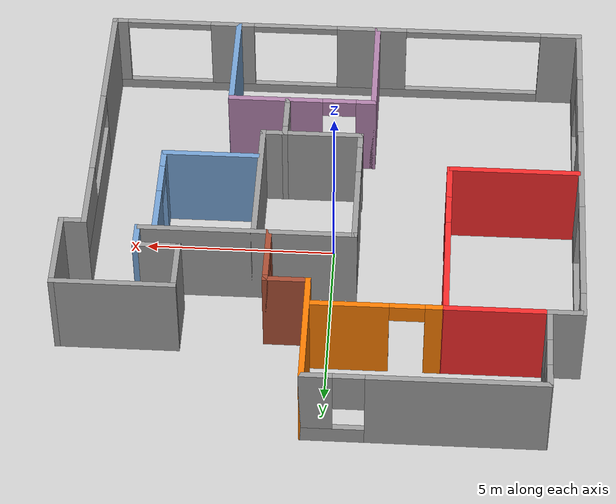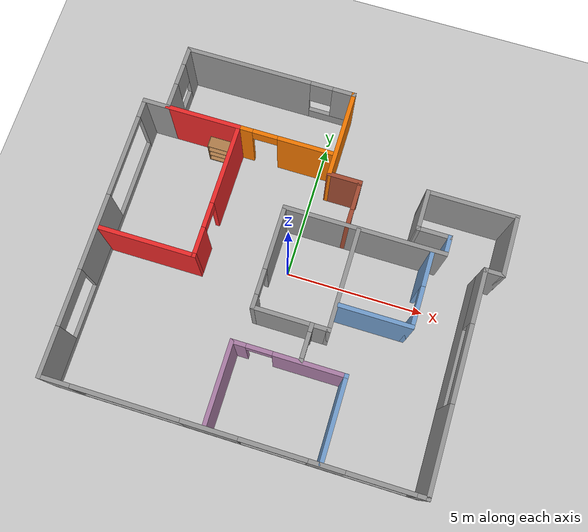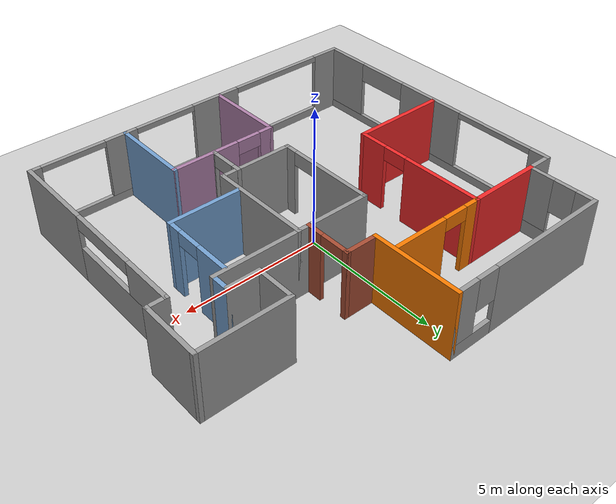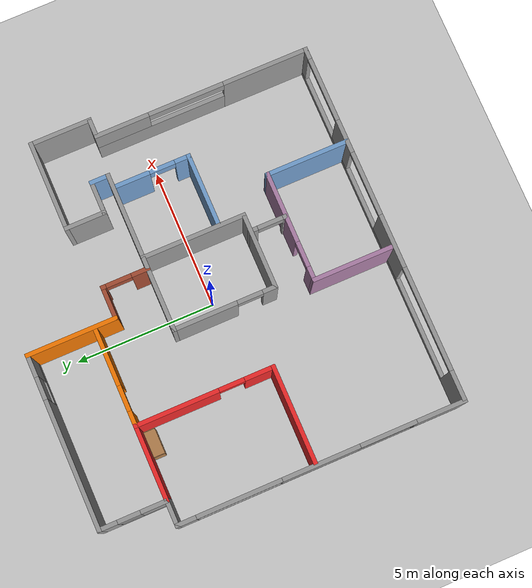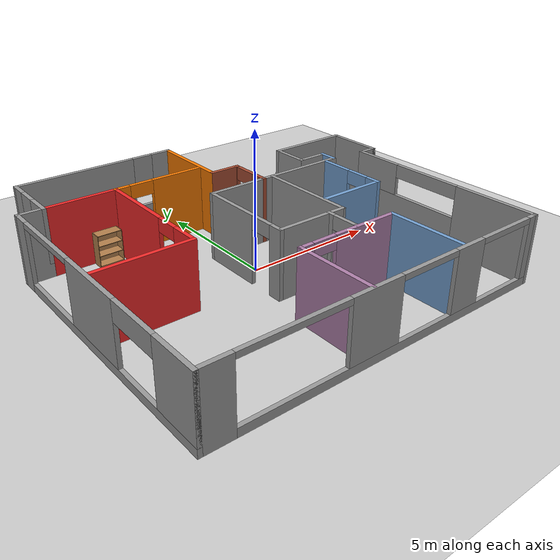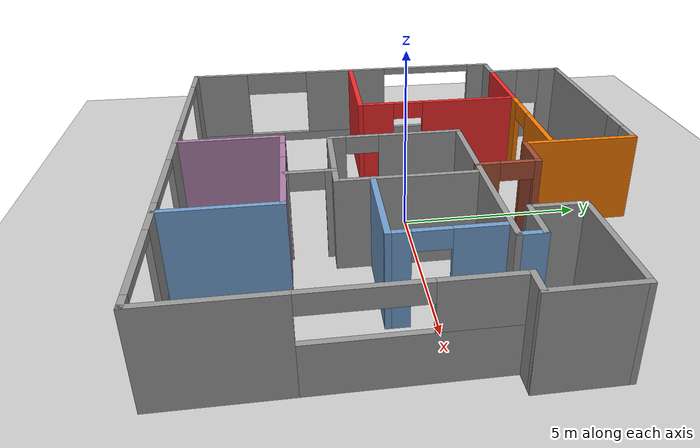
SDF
<sdf version="1.6">
 <world name="default">
  <model name="ground_plane">
   <static>1</static>
   <link name="link">
    <collision name="collision">
     <geometry><plane><normal>0 0 1</normal><size>100 100</size></plane></geometry>
     <surface>
      <contact><collide_bitmask>65535</collide_bitmask></contact>
      <friction><ode><mu>100</mu><mu2>50</mu2></ode></friction>
     </surface>
    </collision>
    <visual name="visual">
     <cast_shadows>0</cast_shadows>
     <geometry><plane><normal>0 0 1</normal><size>100 100</size></plane></geometry>
     <material>
      <script><uri>file://media/materials/scripts/gazebo.material</uri><name>Gazebo/Grey</name></script>
     </material>
    </visual>
   </link>
  </model>
  <model name="Naegok_House">
   <pose>0.27217 0.0598 0 0 -0 0</pose>
   <link name="Wall_32">
    <pose>-5.875 5.05 0 0 -0 -1.5708</pose>
    <visual name="Wall_32_Visual_0">
     <pose>-0.895035 0 1.25 0 -0 0</pose>
     <geometry><box><size>0.709929 0.15 2.5</size></box></geometry>
     <material>
      <script><uri>file://media/materials/scripts/gazebo.material</uri><name>Gazebo/Grey</name></script>
      <ambient>1 1 1 1</ambient>
     </material>
     <meta><layer>0</layer></meta>
    </visual>
    <collision name="Wall_32_Collision_0">
     <geometry><box><size>0.709929 0.15 2.5</size></box></geometry>
     <pose>-0.895035 0 1.25 0 -0 0</pose>
    </collision>
    <visual name="Wall_32_Visual_1">
     <pose>0.354965 0 0.25 0 -0 0</pose>
     <geometry><box><size>1.79007 0.15 0.5</size></box></geometry>
     <material>
      <script><uri>file://media/materials/scripts/gazebo.material</uri><name>Gazebo/Grey</name></script>
      <ambient>1 1 1 1</ambient>
     </material>
     <meta><layer>0</layer></meta>
    </visual>
    <collision name="Wall_32_Collision_1">
     <geometry><box><size>1.79007 0.15 0.5</size></box></geometry>
     <pose>0.354965 0 0.25 0 -0 0</pose>
    </collision>
    <visual name="Wall_32_Visual_2">
     <pose>0.754965 0 1.5 0 -0 0</pose>
     <geometry><box><size>0.990071 0.15 2</size></box></geometry>
     <material>
      <script><uri>file://media/materials/scripts/gazebo.material</uri><name>Gazebo/Grey</name></script>
      <ambient>1 1 1 1</ambient>
     </material>
     <meta><layer>0</layer></meta>
    </visual>
    <collision name="Wall_32_Collision_2">
     <geometry><box><size>0.990071 0.15 2</size></box></geometry>
     <pose>0.754965 0 1.5 0 -0 0</pose>
    </collision>
    <visual name="Wall_32_Visual_3">
     <pose>-0.140071 0 1.9 0 -0 0</pose>
     <geometry><box><size>0.8 0.15 1.2</size></box></geometry>
     <material>
      <script><uri>file://media/materials/scripts/gazebo.material</uri><name>Gazebo/Grey</name></script>
      <ambient>1 1 1 1</ambient>
     </material>
     <meta><layer>0</layer></meta>
    </visual>
    <collision name="Wall_32_Collision_3">
     <geometry><box><size>0.8 0.15 1.2</size></box></geometry>
     <pose>-0.140071 0 1.9 0 -0 0</pose>
    </collision>
   </link>
   <link name="Wall_33">
    <collision name="Wall_33_Collision">
     <geometry><box><size>1 0.15 2.5</size></box></geometry>
     <pose>0 0 1.25 0 -0 0</pose>
    </collision>
    <visual name="Wall_33_Visual">
     <pose>0 0 1.25 0 -0 0</pose>
     <geometry><box><size>1 0.15 2.5</size></box></geometry>
     <material>
      <script><uri>file://media/materials/scripts/gazebo.material</uri><name>Gazebo/Grey</name></script>
      <ambient>1 1 1 1</ambient>
     </material>
     <meta><layer>0</layer></meta>
    </visual>
    <pose>-6.3 3.875 0 0 -0 3.14159</pose>
   </link>
   <link name="Wall_34">
    <pose>-6.725 -1.175 0 0 -0 -1.5708</pose>
    <visual name="Wall_34_Visual_0">
     <pose>-4.75688 0 1.25 0 -0 0</pose>
     <geometry><box><size>0.736232 0.15 2.5</size></box></geometry>
     <material>
      <script><uri>file://media/materials/scripts/gazebo.material</uri><name>Gazebo/Grey</name></script>
      <ambient>1 1 1 1</ambient>
     </material>
     <meta><layer>0</layer></meta>
    </visual>
    <collision name="Wall_34_Collision_0">
     <geometry><box><size>0.736232 0.15 2.5</size></box></geometry>
     <pose>-4.75688 0 1.25 0 -0 0</pose>
    </collision>
    <visual name="Wall_34_Visual_1">
     <pose>0.368116 0 0.15 0 -0 0</pose>
     <geometry><box><size>9.51377 0.15 0.3</size></box></geometry>
     <material>
      <script><uri>file://media/materials/scripts/gazebo.material</uri><name>Gazebo/Grey</name></script>
      <ambient>1 1 1 1</ambient>
     </material>
     <meta><layer>0</layer></meta>
    </visual>
    <collision name="Wall_34_Collision_1">
     <geometry><box><size>9.51377 0.15 0.3</size></box></geometry>
     <pose>0.368116 0 0.15 0 -0 0</pose>
    </collision>
    <visual name="Wall_34_Visual_2">
     <pose>-0.018295 0 1.4 0 -0 0</pose>
     <geometry><box><size>2.74094 0.15 2.2</size></box></geometry>
     <material>
      <script><uri>file://media/materials/scripts/gazebo.material</uri><name>Gazebo/Grey</name></script>
      <ambient>1 1 1 1</ambient>
     </material>
     <meta><layer>0</layer></meta>
    </visual>
    <collision name="Wall_34_Collision_2">
     <geometry><box><size>2.74094 0.15 2.2</size></box></geometry>
     <pose>-0.018295 0 1.4 0 -0 0</pose>
    </collision>
    <visual name="Wall_34_Visual_3">
     <pose>4.23859 0 1.4 0 -0 0</pose>
     <geometry><box><size>1.77282 0.15 2.2</size></box></geometry>
     <material>
      <script><uri>file://media/materials/scripts/gazebo.material</uri><name>Gazebo/Grey</name></script>
      <ambient>1 1 1 1</ambient>
     </material>
     <meta><layer>0</layer></meta>
    </visual>
    <collision name="Wall_34_Collision_3">
     <geometry><box><size>1.77282 0.15 2.2</size></box></geometry>
     <pose>4.23859 0 1.4 0 -0 0</pose>
    </collision>
    <visual name="Wall_34_Visual_4">
     <pose>2.35218 0 2.15 0 -0 0</pose>
     <geometry><box><size>2 0.15 0.7</size></box></geometry>
     <material>
      <script><uri>file://media/materials/scripts/gazebo.material</uri><name>Gazebo/Grey</name></script>
      <ambient>1 1 1 1</ambient>
     </material>
     <meta><layer>0</layer></meta>
    </visual>
    <collision name="Wall_34_Collision_4">
     <geometry><box><size>2 0.15 0.7</size></box></geometry>
     <pose>2.35218 0 2.15 0 -0 0</pose>
    </collision>
    <visual name="Wall_34_Visual_5">
     <pose>-2.88877 0 2.4 0 -0 0</pose>
     <geometry><box><size>3 0.15 0.2</size></box></geometry>
     <material>
      <script><uri>file://media/materials/scripts/gazebo.material</uri><name>Gazebo/Grey</name></script>
      <ambient>1 1 1 1</ambient>
     </material>
     <meta><layer>0</layer></meta>
    </visual>
    <collision name="Wall_34_Collision_5">
     <geometry><box><size>3 0.15 0.2</size></box></geometry>
     <pose>-2.88877 0 2.4 0 -0 0</pose>
    </collision>
   </link>
   <link name="Wall_35">
    <pose>-0.3 -6.225 0 0 -0 0</pose>
    <visual name="Wall_35_Visual_0">
     <pose>-5.93367 0 1.25 0 -0 0</pose>
     <geometry><box><size>1.13267 0.15 2.5</size></box></geometry>
     <material>
      <script><uri>file://media/materials/scripts/gazebo.material</uri><name>Gazebo/Grey</name></script>
      <ambient>1 1 1 1</ambient>
     </material>
     <meta><layer>0</layer></meta>
    </visual>
    <collision name="Wall_35_Collision_0">
     <geometry><box><size>1.13267 0.15 2.5</size></box></geometry>
     <pose>-5.93367 0 1.25 0 -0 0</pose>
    </collision>
    <visual name="Wall_35_Visual_1">
     <pose>0.566334 0 0.15 0 -0 0</pose>
     <geometry><box><size>11.8673 0.15 0.3</size></box></geometry>
     <material>
      <script><uri>file://media/materials/scripts/gazebo.material</uri><name>Gazebo/Grey</name></script>
      <ambient>1 1 1 1</ambient>
     </material>
     <meta><layer>0</layer></meta>
    </visual>
    <collision name="Wall_35_Collision_1">
     <geometry><box><size>11.8673 0.15 0.3</size></box></geometry>
     <pose>0.566334 0 0.15 0 -0 0</pose>
    </collision>
    <visual name="Wall_35_Visual_2">
     <pose>-0.705786 0 1.4 0 -0 0</pose>
     <geometry><box><size>1.92309 0.15 2.2</size></box></geometry>
     <material>
      <script><uri>file://media/materials/scripts/gazebo.material</uri><name>Gazebo/Grey</name></script>
      <ambient>1 1 1 1</ambient>
     </material>
     <meta><layer>0</layer></meta>
    </visual>
    <collision name="Wall_35_Collision_2">
     <geometry><box><size>1.92309 0.15 2.2</size></box></geometry>
     <pose>-0.705786 0 1.4 0 -0 0</pose>
    </collision>
    <visual name="Wall_35_Visual_3">
     <pose>3.1598 0 1.4 0 -0 0</pose>
     <geometry><box><size>1.20807 0.15 2.2</size></box></geometry>
     <material>
      <script><uri>file://media/materials/scripts/gazebo.material</uri><name>Gazebo/Grey</name></script>
      <ambient>1 1 1 1</ambient>
     </material>
     <meta><layer>0</layer></meta>
    </visual>
    <collision name="Wall_35_Collision_3">
     <geometry><box><size>1.20807 0.15 2.2</size></box></geometry>
     <pose>3.1598 0 1.4 0 -0 0</pose>
    </collision>
    <visual name="Wall_35_Visual_4">
     <pose>6.28192 0 1.4 0 -0 0</pose>
     <geometry><box><size>0.436168 0.15 2.2</size></box></geometry>
     <material>
      <script><uri>file://media/materials/scripts/gazebo.material</uri><name>Gazebo/Grey</name></script>
      <ambient>1 1 1 1</ambient>
     </material>
     <meta><layer>0</layer></meta>
    </visual>
    <collision name="Wall_35_Collision_4">
     <geometry><box><size>0.436168 0.15 2.2</size></box></geometry>
     <pose>6.28192 0 1.4 0 -0 0</pose>
    </collision>
    <visual name="Wall_35_Visual_5">
     <pose>-3.51733 0 2.4 0 -0 0</pose>
     <geometry><box><size>3.7 0.15 0.2</size></box></geometry>
     <material>
      <script><uri>file://media/materials/scripts/gazebo.material</uri><name>Gazebo/Grey</name></script>
      <ambient>1 1 1 1</ambient>
     </material>
     <meta><layer>0</layer></meta>
    </visual>
    <collision name="Wall_35_Collision_5">
     <geometry><box><size>3.7 0.15 0.2</size></box></geometry>
     <pose>-3.51733 0 2.4 0 -0 0</pose>
    </collision>
    <visual name="Wall_35_Visual_6">
     <pose>1.40576 0 2.4 0 -0 0</pose>
     <geometry><box><size>2.3 0.15 0.2</size></box></geometry>
     <material>
      <script><uri>file://media/materials/scripts/gazebo.material</uri><name>Gazebo/Grey</name></script>
      <ambient>1 1 1 1</ambient>
     </material>
     <meta><layer>0</layer></meta>
    </visual>
    <collision name="Wall_35_Collision_6">
     <geometry><box><size>2.3 0.15 0.2</size></box></geometry>
     <pose>1.40576 0 2.4 0 -0 0</pose>
    </collision>
    <visual name="Wall_35_Visual_7">
     <pose>4.91383 0 2.4 0 -0 0</pose>
     <geometry><box><size>2.3 0.15 0.2</size></box></geometry>
     <material>
      <script><uri>file://media/materials/scripts/gazebo.material</uri><name>Gazebo/Grey</name></script>
      <ambient>1 1 1 1</ambient>
     </material>
     <meta><layer>0</layer></meta>
    </visual>
    <collision name="Wall_35_Collision_7">
     <geometry><box><size>2.3 0.15 0.2</size></box></geometry>
     <pose>4.91383 0 2.4 0 -0 0</pose>
    </collision>
   </link>
   <link name="Wall_36">
    <pose>6.125 -2.425 0 0 -0 1.5708</pose>
    <visual name="Wall_36_Visual_0">
     <pose>-2.32991 0 1.25 0 -0 0</pose>
     <geometry><box><size>3.09019 0.15 2.5</size></box></geometry>
     <material>
      <script><uri>file://media/materials/scripts/gazebo.material</uri><name>Gazebo/Grey</name></script>
      <ambient>1 1 1 1</ambient>
     </material>
     <meta><layer>0</layer></meta>
    </visual>
    <collision name="Wall_36_Collision_0">
     <geometry><box><size>3.09019 0.15 2.5</size></box></geometry>
     <pose>-2.32991 0 1.25 0 -0 0</pose>
    </collision>
    <visual name="Wall_36_Visual_1">
     <pose>1.54509 0 0.65 0 -0 0</pose>
     <geometry><box><size>4.65981 0.15 1.3</size></box></geometry>
     <material>
      <script><uri>file://media/materials/scripts/gazebo.material</uri><name>Gazebo/Grey</name></script>
      <ambient>1 1 1 1</ambient>
     </material>
     <meta><layer>0</layer></meta>
    </visual>
    <collision name="Wall_36_Collision_1">
     <geometry><box><size>4.65981 0.15 1.3</size></box></geometry>
     <pose>1.54509 0 0.65 0 -0 0</pose>
    </collision>
    <visual name="Wall_36_Visual_2">
     <pose>2.89509 0 1.9 0 -0 0</pose>
     <geometry><box><size>1.95981 0.15 1.2</size></box></geometry>
     <material>
      <script><uri>file://media/materials/scripts/gazebo.material</uri><name>Gazebo/Grey</name></script>
      <ambient>1 1 1 1</ambient>
     </material>
     <meta><layer>0</layer></meta>
    </visual>
    <collision name="Wall_36_Collision_2">
     <geometry><box><size>1.95981 0.15 1.2</size></box></geometry>
     <pose>2.89509 0 1.9 0 -0 0</pose>
    </collision>
    <visual name="Wall_36_Visual_3">
     <pose>0.565187 0 2.25 0 -0 0</pose>
     <geometry><box><size>2.7 0.15 0.5</size></box></geometry>
     <material>
      <script><uri>file://media/materials/scripts/gazebo.material</uri><name>Gazebo/Grey</name></script>
      <ambient>1 1 1 1</ambient>
     </material>
     <meta><layer>0</layer></meta>
    </visual>
    <collision name="Wall_36_Collision_3">
     <geometry><box><size>2.7 0.15 0.5</size></box></geometry>
     <pose>0.565187 0 2.25 0 -0 0</pose>
    </collision>
   </link>
   <link name="Wall_37">
    <collision name="Wall_37_Collision">
     <geometry><box><size>0.75 0.15 2.5</size></box></geometry>
     <pose>0 0 1.25 0 -0 0</pose>
    </collision>
    <visual name="Wall_37_Visual">
     <pose>0 0 1.25 0 -0 0</pose>
     <geometry><box><size>0.75 0.15 2.5</size></box></geometry>
     <material>
      <script><uri>file://media/materials/scripts/gazebo.material</uri><name>Gazebo/Grey</name></script>
      <ambient>1 1 1 1</ambient>
     </material>
     <meta><layer>0</layer></meta>
    </visual>
    <pose>6.425 1.375 0 0 -0 0</pose>
   </link>
   <link name="Wall_38">
    <collision name="Wall_38_Collision">
     <geometry><box><size>2.25 0.15 2.5</size></box></geometry>
     <pose>0 0 1.25 0 -0 0</pose>
    </collision>
    <visual name="Wall_38_Visual">
     <pose>0 0 1.25 0 -0 0</pose>
     <geometry><box><size>2.25 0.15 2.5</size></box></geometry>
     <material>
      <script><uri>file://media/materials/scripts/gazebo.material</uri><name>Gazebo/Grey</name></script>
      <ambient>1 1 1 1</ambient>
     </material>
     <meta><layer>0</layer></meta>
    </visual>
    <pose>6.725 2.425 0 0 -0 1.5708</pose>
   </link>
   <link name="Wall_39">
    <collision name="Wall_39_Collision">
     <geometry><box><size>3.25 0.15 2.5</size></box></geometry>
     <pose>0 0 1.25 0 -0 0</pose>
    </collision>
    <visual name="Wall_39_Visual">
     <pose>0 0 1.25 0 -0 0</pose>
     <geometry><box><size>3.25 0.15 2.5</size></box></geometry>
     <material>
      <script><uri>file://media/materials/scripts/gazebo.material</uri><name>Gazebo/Grey</name></script>
      <ambient>1 1 1 1</ambient>
     </material>
     <meta><layer>0</layer></meta>
    </visual>
    <pose>5.175 3.475 0 0 -0 3.14159</pose>
   </link>
   <link name="Wall_40">
    <collision name="Wall_40_Collision">
     <geometry><box><size>1.5 0.15 2.5</size></box></geometry>
     <pose>0 0 1.25 0 -0 0</pose>
    </collision>
    <visual name="Wall_40_Visual">
     <pose>0 0 1.25 0 -0 0</pose>
     <geometry><box><size>1.5 0.15 2.5</size></box></geometry>
     <material>
      <script><uri>file://media/materials/scripts/gazebo.material</uri><name>Gazebo/Grey</name></script>
      <ambient>1 1 1 1</ambient>
     </material>
     <meta><layer>0</layer></meta>
    </visual>
    <pose>3.625 2.8 0 0 -0 -1.5708</pose>
   </link>
   <link name="Wall_41">
    <collision name="Wall_41_Collision">
     <geometry><box><size>1.25 0.15 2.5</size></box></geometry>
     <pose>0 0 1.25 0 -0 0</pose>
    </collision>
    <visual name="Wall_41_Visual">
     <pose>0 0 1.25 0 -0 0</pose>
     <geometry><box><size>1.25 0.15 2.5</size></box></geometry>
     <material>
      <script><uri>file://media/materials/scripts/gazebo.material</uri><name>Gazebo/Grey</name></script>
      <ambient>1 1 1 1</ambient>
     </material>
     <meta><layer>0</layer></meta>
    </visual>
    <pose>4.175 2.125 0 0 -0 0</pose>
   </link>
   <link name="Wall_42">
    <collision name="Wall_42_Collision">
     <geometry><box><size>0.75 0.15 2.5</size></box></geometry>
     <pose>0 0 1.25 0 -0 0</pose>
    </collision>
    <visual name="Wall_42_Visual">
     <pose>0 0 1.25 0 -0 0</pose>
     <geometry><box><size>0.75 0.15 2.5</size></box></geometry>
     <material>
      <script><uri>file://media/materials/scripts/gazebo.material</uri><name>Gazebo/Grey</name></script>
      <ambient>0.447059 0.623529 0.811765 1</ambient>
     </material>
     <meta><layer>0</layer></meta>
    </visual>
    <pose>4.725 1.825 0 0 -0 -1.5708</pose>
   </link>
   <link name="Wall_43">
    <collision name="Wall_43_Collision">
     <geometry><box><size>5.75 0.15 2.5</size></box></geometry>
     <pose>0 0 1.25 0 -0 0</pose>
    </collision>
    <visual name="Wall_43_Visual">
     <pose>0 0 1.25 0 -0 0</pose>
     <geometry><box><size>5.75 0.15 2.5</size></box></geometry>
     <material>
      <script><uri>file://media/materials/scripts/gazebo.material</uri><name>Gazebo/Grey</name></script>
      <ambient>1 1 1 1</ambient>
     </material>
     <meta><layer>0</layer></meta>
    </visual>
    <pose>1.925 1.525 0 0 -0 3.14159</pose>
   </link>
   <link name="Wall_44">
    <pose>-0.875 -0.275 0 0 -0 -1.5708</pose>
    <visual name="Wall_44_Visual_0">
     <pose>-0.710452 0 1.25 0 -0 0</pose>
     <geometry><box><size>2.3291 0.15 2.5</size></box></geometry>
     <material>
      <script><uri>file://media/materials/scripts/gazebo.material</uri><name>Gazebo/Grey</name></script>
      <ambient>1 1 1 1</ambient>
     </material>
     <meta><layer>0</layer></meta>
    </visual>
    <collision name="Wall_44_Collision_0">
     <geometry><box><size>2.3291 0.15 2.5</size></box></geometry>
     <pose>-0.710452 0 1.25 0 -0 0</pose>
    </collision>
    <visual name="Wall_44_Visual_1">
     <pose>1.61455 0 1.25 0 -0 0</pose>
     <geometry><box><size>0.520903 0.15 2.5</size></box></geometry>
     <material>
      <script><uri>file://media/materials/scripts/gazebo.material</uri><name>Gazebo/Grey</name></script>
      <ambient>1 1 1 1</ambient>
     </material>
     <meta><layer>0</layer></meta>
    </visual>
    <collision name="Wall_44_Collision_1">
     <geometry><box><size>0.520903 0.15 2.5</size></box></geometry>
     <pose>1.61455 0 1.25 0 -0 0</pose>
    </collision>
    <visual name="Wall_44_Visual_2">
     <pose>0.904097 0 2.25 0 -0 0</pose>
     <geometry><box><size>0.9 0.15 0.5</size></box></geometry>
     <material>
      <script><uri>file://media/materials/scripts/gazebo.material</uri><name>Gazebo/Grey</name></script>
      <ambient>1 1 1 1</ambient>
     </material>
     <meta><layer>0</layer></meta>
    </visual>
    <collision name="Wall_44_Collision_2">
     <geometry><box><size>0.9 0.15 0.5</size></box></geometry>
     <pose>0.904097 0 2.25 0 -0 0</pose>
    </collision>
   </link>
   <link name="Wall_45">
    <collision name="Wall_45_Collision">
     <geometry><box><size>2.75 0.15 2.5</size></box></geometry>
     <pose>0 0 1.25 0 -0 0</pose>
    </collision>
    <visual name="Wall_45_Visual">
     <pose>0 0 1.25 0 -0 0</pose>
     <geometry><box><size>2.75 0.15 2.5</size></box></geometry>
     <material>
      <script><uri>file://media/materials/scripts/gazebo.material</uri><name>Gazebo/Grey</name></script>
      <ambient>1 1 1 1</ambient>
     </material>
     <meta><layer>0</layer></meta>
    </visual>
    <pose>0.425 -2.075 0 0 -0 0</pose>
   </link>
   <link name="Wall_46">
    <collision name="Wall_46_Collision">
     <geometry><box><size>3.75 0.15 2.5</size></box></geometry>
     <pose>0 0 1.25 0 -0 0</pose>
    </collision>
    <visual name="Wall_46_Visual">
     <pose>0 0 1.25 0 -0 0</pose>
     <geometry><box><size>3.75 0.15 2.5</size></box></geometry>
     <material>
      <script><uri>file://media/materials/scripts/gazebo.material</uri><name>Gazebo/Grey</name></script>
      <ambient>1 1 1 1</ambient>
     </material>
     <meta><layer>0</layer></meta>
    </visual>
    <pose>1.725 -0.275 0 0 -0 1.5708</pose>
   </link>
   <link name="Wall_49">
    <pose>4.28757 0.115926 0 0 -0 -1.5708</pose>
    <visual name="Wall_49_Visual_0">
     <pose>-0.743249 0 1.25 0 -0 0</pose>
     <geometry><box><size>1.2635 0.15 2.5</size></box></geometry>
     <material>
      <script><uri>file://media/materials/scripts/gazebo.material</uri><name>Gazebo/Grey</name></script>
      <ambient>0.447059 0.623529 0.811765 1</ambient>
     </material>
     <meta><layer>0</layer></meta>
    </visual>
    <collision name="Wall_49_Collision_0">
     <geometry><box><size>1.2635 0.15 2.5</size></box></geometry>
     <pose>-0.743249 0 1.25 0 -0 0</pose>
    </collision>
    <visual name="Wall_49_Visual_1">
     <pose>1.08175 0 1.25 0 -0 0</pose>
     <geometry><box><size>0.586499 0.15 2.5</size></box></geometry>
     <material>
      <script><uri>file://media/materials/scripts/gazebo.material</uri><name>Gazebo/Grey</name></script>
      <ambient>0.447059 0.623529 0.811765 1</ambient>
     </material>
     <meta><layer>0</layer></meta>
    </visual>
    <collision name="Wall_49_Collision_1">
     <geometry><box><size>0.586499 0.15 2.5</size></box></geometry>
     <pose>1.08175 0 1.25 0 -0 0</pose>
    </collision>
    <visual name="Wall_49_Visual_2">
     <pose>0.338501 0 2.25 0 -0 0</pose>
     <geometry><box><size>0.9 0.15 0.5</size></box></geometry>
     <material>
      <script><uri>file://media/materials/scripts/gazebo.material</uri><name>Gazebo/Grey</name></script>
      <ambient>0.447059 0.623529 0.811765 1</ambient>
     </material>
     <meta><layer>0</layer></meta>
    </visual>
    <collision name="Wall_49_Collision_2">
     <geometry><box><size>0.9 0.15 0.5</size></box></geometry>
     <pose>0.338501 0 2.25 0 -0 0</pose>
    </collision>
   </link>
   <link name="Wall_50">
    <collision name="Wall_50_Collision">
     <geometry><box><size>2.6 0.15 2.5</size></box></geometry>
     <pose>0 0 1.25 0 -0 0</pose>
    </collision>
    <visual name="Wall_50_Visual">
     <pose>0 0 1.25 0 -0 0</pose>
     <geometry><box><size>2.6 0.15 2.5</size></box></geometry>
     <material>
      <script><uri>file://media/materials/scripts/gazebo.material</uri><name>Gazebo/Grey</name></script>
      <ambient>0.447059 0.623529 0.811765 1</ambient>
     </material>
     <meta><layer>0</layer></meta>
    </visual>
    <pose>3.06257 -1.18407 0 0 -0 3.14159</pose>
   </link>
   <link name="Wall_52">
    <pose>-2.825 6.225 0 0 -0 0</pose>
    <visual name="Wall_52_Visual_0">
     <pose>-0.822876 0 1.25 0 -0 0</pose>
     <geometry><box><size>4.60425 0.15 2.5</size></box></geometry>
     <material>
      <script><uri>file://media/materials/scripts/gazebo.material</uri><name>Gazebo/Grey</name></script>
      <ambient>1 1 1 1</ambient>
     </material>
     <meta><layer>0</layer></meta>
    </visual>
    <collision name="Wall_52_Collision_0">
     <geometry><box><size>4.60425 0.15 2.5</size></box></geometry>
     <pose>-0.822876 0 1.25 0 -0 0</pose>
    </collision>
    <visual name="Wall_52_Visual_1">
     <pose>2.30212 0 0.25 0 -0 0</pose>
     <geometry><box><size>1.64575 0.15 0.5</size></box></geometry>
     <material>
      <script><uri>file://media/materials/scripts/gazebo.material</uri><name>Gazebo/Grey</name></script>
      <ambient>1 1 1 1</ambient>
     </material>
     <meta><layer>0</layer></meta>
    </visual>
    <collision name="Wall_52_Collision_1">
     <geometry><box><size>1.64575 0.15 0.5</size></box></geometry>
     <pose>2.30212 0 0.25 0 -0 0</pose>
    </collision>
    <visual name="Wall_52_Visual_2">
     <pose>2.70212 0 1.5 0 -0 0</pose>
     <geometry><box><size>0.845753 0.15 2</size></box></geometry>
     <material>
      <script><uri>file://media/materials/scripts/gazebo.material</uri><name>Gazebo/Grey</name></script>
      <ambient>1 1 1 1</ambient>
     </material>
     <meta><layer>0</layer></meta>
    </visual>
    <collision name="Wall_52_Collision_2">
     <geometry><box><size>0.845753 0.15 2</size></box></geometry>
     <pose>2.70212 0 1.5 0 -0 0</pose>
    </collision>
    <visual name="Wall_52_Visual_3">
     <pose>1.87925 0 1.9 0 -0 0</pose>
     <geometry><box><size>0.8 0.15 1.2</size></box></geometry>
     <material>
      <script><uri>file://media/materials/scripts/gazebo.material</uri><name>Gazebo/Grey</name></script>
      <ambient>1 1 1 1</ambient>
     </material>
     <meta><layer>0</layer></meta>
    </visual>
    <collision name="Wall_52_Collision_3">
     <geometry><box><size>0.8 0.15 1.2</size></box></geometry>
     <pose>1.87925 0 1.9 0 -0 0</pose>
    </collision>
   </link>
   <link name="Wall_53">
    <collision name="Wall_53_Collision">
     <geometry><box><size>3.25 0.15 2.5</size></box></geometry>
     <pose>0 0 1.25 0 -0 0</pose>
    </collision>
    <visual name="Wall_53_Visual">
     <pose>0 0 1.25 0 -0 0</pose>
     <geometry><box><size>3.25 0.15 2.5</size></box></geometry>
     <material>
      <script><uri>file://media/materials/scripts/gazebo.material</uri><name>Gazebo/Grey</name></script>
      <ambient>0.960784 0.47451 0 1</ambient>
     </material>
     <meta><layer>0</layer></meta>
    </visual>
    <pose>0.225 4.675 0 0 -0 -1.5708</pose>
   </link>
   <link name="Wall_54">
    <collision name="Wall_54_Collision">
     <geometry><box><size>1.25 0.15 2.5</size></box></geometry>
     <pose>0 0 1.25 0 -0 0</pose>
    </collision>
    <visual name="Wall_54_Visual">
     <pose>0 0 1.25 0 -0 0</pose>
     <geometry><box><size>1.25 0.15 2.5</size></box></geometry>
     <material>
      <script><uri>file://media/materials/scripts/gazebo.material</uri><name>Gazebo/Bricks</name></script>
      <ambient>1 1 1 1</ambient>
     </material>
     <meta><layer>0</layer></meta>
    </visual>
    <pose>0.775 3.125 0 0 -0 0</pose>
   </link>
   <link name="Wall_55">
    <pose>1.325 2.325 0 0 -0 -1.5708</pose>
    <visual name="Wall_55_Visual_0">
     <pose>-0.780017 0 1.25 0 -0 0</pose>
     <geometry><box><size>0.189966 0.15 2.5</size></box></geometry>
     <material>
      <script><uri>file://media/materials/scripts/gazebo.material</uri><name>Gazebo/Bricks</name></script>
      <ambient>1 1 1 1</ambient>
     </material>
     <meta><layer>0</layer></meta>
    </visual>
    <collision name="Wall_55_Collision_0">
     <geometry><box><size>0.189966 0.15 2.5</size></box></geometry>
     <pose>-0.780017 0 1.25 0 -0 0</pose>
    </collision>
    <visual name="Wall_55_Visual_1">
     <pose>0.544983 0 1.25 0 -0 0</pose>
     <geometry><box><size>0.660034 0.15 2.5</size></box></geometry>
     <material>
      <script><uri>file://media/materials/scripts/gazebo.material</uri><name>Gazebo/Bricks</name></script>
      <ambient>1 1 1 1</ambient>
     </material>
     <meta><layer>0</layer></meta>
    </visual>
    <collision name="Wall_55_Collision_1">
     <geometry><box><size>0.660034 0.15 2.5</size></box></geometry>
     <pose>0.544983 0 1.25 0 -0 0</pose>
    </collision>
    <visual name="Wall_55_Visual_2">
     <pose>-0.235034 0 2.25 0 -0 0</pose>
     <geometry><box><size>0.9 0.15 0.5</size></box></geometry>
     <material>
      <script><uri>file://media/materials/scripts/gazebo.material</uri><name>Gazebo/Bricks</name></script>
      <ambient>1 1 1 1</ambient>
     </material>
     <meta><layer>0</layer></meta>
    </visual>
    <collision name="Wall_55_Collision_2">
     <geometry><box><size>0.9 0.15 0.5</size></box></geometry>
     <pose>-0.235034 0 2.25 0 -0 0</pose>
    </collision>
   </link>
   <link name="Wall_58">
    <collision name="Wall_58_Collision">
     <geometry><box><size>2.75 0.15 2.5</size></box></geometry>
     <pose>0 0 1.25 0 -0 0</pose>
    </collision>
    <visual name="Wall_58_Visual">
     <pose>0 0 1.25 0 -0 0</pose>
     <geometry><box><size>2.75 0.15 2.5</size></box></geometry>
     <material>
      <script><uri>file://media/materials/scripts/gazebo.material</uri><name>Gazebo/Grey</name></script>
      <ambient>0.937255 0.160784 0.160784 1</ambient>
     </material>
     <meta><layer>0</layer></meta>
    </visual>
    <pose>-4.575 3.875 0 0 -0 0</pose>
   </link>
   <link name="Wall_59">
    <pose>-3.275 1.45 0 0 -0 -1.5708</pose>
    <visual name="Wall_59_Visual_0">
     <pose>-1.00103 0 1.25 0 -0 0</pose>
     <geometry><box><size>2.99794 0.15 2.5</size></box></geometry>
     <material>
      <script><uri>file://media/materials/scripts/gazebo.material</uri><name>Gazebo/Grey</name></script>
      <ambient>0.937255 0.160784 0.160784 1</ambient>
     </material>
     <meta><layer>0</layer></meta>
    </visual>
    <collision name="Wall_59_Collision_0">
     <geometry><box><size>2.99794 0.15 2.5</size></box></geometry>
     <pose>-1.00103 0 1.25 0 -0 0</pose>
    </collision>
    <visual name="Wall_59_Visual_1">
     <pose>1.94897 0 1.25 0 -0 0</pose>
     <geometry><box><size>1.10206 0.15 2.5</size></box></geometry>
     <material>
      <script><uri>file://media/materials/scripts/gazebo.material</uri><name>Gazebo/Grey</name></script>
      <ambient>0.937255 0.160784 0.160784 1</ambient>
     </material>
     <meta><layer>0</layer></meta>
    </visual>
    <collision name="Wall_59_Collision_1">
     <geometry><box><size>1.10206 0.15 2.5</size></box></geometry>
     <pose>1.94897 0 1.25 0 -0 0</pose>
    </collision>
    <visual name="Wall_59_Visual_2">
     <pose>0.947937 0 2.25 0 -0 0</pose>
     <geometry><box><size>0.9 0.15 0.5</size></box></geometry>
     <material>
      <script><uri>file://media/materials/scripts/gazebo.material</uri><name>Gazebo/Grey</name></script>
      <ambient>0.937255 0.160784 0.160784 1</ambient>
     </material>
     <meta><layer>0</layer></meta>
    </visual>
    <collision name="Wall_59_Collision_2">
     <geometry><box><size>0.9 0.15 0.5</size></box></geometry>
     <pose>0.947937 0 2.25 0 -0 0</pose>
    </collision>
   </link>
   <link name="Wall_60">
    <collision name="Wall_60_Collision">
     <geometry><box><size>3.5 0.15 2.5</size></box></geometry>
     <pose>0 0 1.25 0 -0 0</pose>
    </collision>
    <visual name="Wall_60_Visual">
     <pose>0 0 1.25 0 -0 0</pose>
     <geometry><box><size>3.5 0.15 2.5</size></box></geometry>
     <material>
      <script><uri>file://media/materials/scripts/gazebo.material</uri><name>Gazebo/Grey</name></script>
      <ambient>0.937255 0.160784 0.160784 1</ambient>
     </material>
     <meta><layer>0</layer></meta>
    </visual>
    <pose>-4.95 -0.975 0 0 -0 3.14159</pose>
   </link>
   <link name="Wall_62">
    <pose>-1.6 3.875 0 0 -0 0</pose>
    <visual name="Wall_62_Visual_0">
     <pose>-1.45201 0 1.25 0 -0 0</pose>
     <geometry><box><size>0.595982 0.15 2.5</size></box></geometry>
     <material>
      <script><uri>file://media/materials/scripts/gazebo.material</uri><name>Gazebo/Grey</name></script>
      <ambient>0.960784 0.47451 0 1</ambient>
     </material>
     <meta><layer>0</layer></meta>
    </visual>
    <collision name="Wall_62_Collision_0">
     <geometry><box><size>0.595982 0.15 2.5</size></box></geometry>
     <pose>-1.45201 0 1.25 0 -0 0</pose>
    </collision>
    <visual name="Wall_62_Visual_1">
     <pose>0.747991 0 1.25 0 -0 0</pose>
     <geometry><box><size>2.00402 0.15 2.5</size></box></geometry>
     <material>
      <script><uri>file://media/materials/scripts/gazebo.material</uri><name>Gazebo/Grey</name></script>
      <ambient>0.960784 0.47451 0 1</ambient>
     </material>
     <meta><layer>0</layer></meta>
    </visual>
    <collision name="Wall_62_Collision_1">
     <geometry><box><size>2.00402 0.15 2.5</size></box></geometry>
     <pose>0.747991 0 1.25 0 -0 0</pose>
    </collision>
    <visual name="Wall_62_Visual_2">
     <pose>-0.704018 0 2.25 0 -0 0</pose>
     <geometry><box><size>0.9 0.15 0.5</size></box></geometry>
     <material>
      <script><uri>file://media/materials/scripts/gazebo.material</uri><name>Gazebo/Grey</name></script>
      <ambient>0.960784 0.47451 0 1</ambient>
     </material>
     <meta><layer>0</layer></meta>
    </visual>
    <collision name="Wall_62_Collision_2">
     <geometry><box><size>0.9 0.15 0.5</size></box></geometry>
     <pose>-0.704018 0 2.25 0 -0 0</pose>
    </collision>
   </link>
   <link name="Wall_64">
    <collision name="Wall_64_Collision">
     <geometry><box><size>3 0.15 2.5</size></box></geometry>
     <pose>0 0 1.25 0 -0 0</pose>
    </collision>
    <visual name="Wall_64_Visual">
     <pose>0 0 1.25 0 -0 0</pose>
     <geometry><box><size>3 0.15 2.5</size></box></geometry>
     <material>
      <script><uri>file://media/materials/scripts/gazebo.material</uri><name>Gazebo/Grey</name></script>
      <ambient>0.678431 0.498039 0.658824 1</ambient>
     </material>
     <meta><layer>0</layer></meta>
    </visual>
    <pose>-1.17358 -4.76859 0 0 -0 1.5708</pose>
   </link>
   <link name="Wall_65">
    <pose>0.751417 -3.34359 0 0 -0 0</pose>
    <visual name="Wall_65_Visual_0">
     <pose>-1.72373 0 1.25 0 -0 0</pose>
     <geometry><box><size>0.552536 0.15 2.5</size></box></geometry>
     <material>
      <script><uri>file://media/materials/scripts/gazebo.material</uri><name>Gazebo/Grey</name></script>
      <ambient>0.678431 0.498039 0.658824 1</ambient>
     </material>
     <meta><layer>0</layer></meta>
    </visual>
    <collision name="Wall_65_Collision_0">
     <geometry><box><size>0.552536 0.15 2.5</size></box></geometry>
     <pose>-1.72373 0 1.25 0 -0 0</pose>
    </collision>
    <visual name="Wall_65_Visual_1">
     <pose>0.726268 0 1.25 0 -0 0</pose>
     <geometry><box><size>2.54746 0.15 2.5</size></box></geometry>
     <material>
      <script><uri>file://media/materials/scripts/gazebo.material</uri><name>Gazebo/Grey</name></script>
      <ambient>0.678431 0.498039 0.658824 1</ambient>
     </material>
     <meta><layer>0</layer></meta>
    </visual>
    <collision name="Wall_65_Collision_1">
     <geometry><box><size>2.54746 0.15 2.5</size></box></geometry>
     <pose>0.726268 0 1.25 0 -0 0</pose>
    </collision>
    <visual name="Wall_65_Visual_2">
     <pose>-0.997464 0 2.25 0 -0 0</pose>
     <geometry><box><size>0.9 0.15 0.5</size></box></geometry>
     <material>
      <script><uri>file://media/materials/scripts/gazebo.material</uri><name>Gazebo/Grey</name></script>
      <ambient>0.678431 0.498039 0.658824 1</ambient>
     </material>
     <meta><layer>0</layer></meta>
    </visual>
    <collision name="Wall_65_Collision_2">
     <geometry><box><size>0.9 0.15 0.5</size></box></geometry>
     <pose>-0.997464 0 2.25 0 -0 0</pose>
    </collision>
   </link>
   <link name="Wall_66">
    <collision name="Wall_66_Collision">
     <geometry><box><size>3 0.15 2.5</size></box></geometry>
     <pose>0 0 1.25 0 -0 0</pose>
    </collision>
    <visual name="Wall_66_Visual">
     <pose>0 0 1.25 0 -0 0</pose>
     <geometry><box><size>3 0.15 2.5</size></box></geometry>
     <material>
      <script><uri>file://media/materials/scripts/gazebo.material</uri><name>Gazebo/Grey</name></script>
      <ambient>0.447059 0.623529 0.811765 1</ambient>
     </material>
     <meta><layer>0</layer></meta>
    </visual>
    <pose>2.67642 -4.76859 0 0 -0 -1.5708</pose>
   </link>
   <link name="Wall_68">
    <pose>1.14526 -2.68252 0 0 -0 -1.5708</pose>
    <visual name="Wall_68_Visual_0">
     <pose>-0.52356 0 1.25 0 -0 0</pose>
     <geometry><box><size>0.322881 0.15 2.5</size></box></geometry>
     <material>
      <script><uri>file://media/materials/scripts/gazebo.material</uri><name>Gazebo/Grey</name></script>
      <ambient>1 1 1 1</ambient>
     </material>
     <meta><layer>0</layer></meta>
    </visual>
    <collision name="Wall_68_Collision_0">
     <geometry><box><size>0.322881 0.15 2.5</size></box></geometry>
     <pose>-0.52356 0 1.25 0 -0 0</pose>
    </collision>
    <visual name="Wall_68_Visual_1">
     <pose>0.61144 0 1.25 0 -0 0</pose>
     <geometry><box><size>0.147119 0.15 2.5</size></box></geometry>
     <material>
      <script><uri>file://media/materials/scripts/gazebo.material</uri><name>Gazebo/Grey</name></script>
      <ambient>1 1 1 1</ambient>
     </material>
     <meta><layer>0</layer></meta>
    </visual>
    <collision name="Wall_68_Collision_1">
     <geometry><box><size>0.147119 0.15 2.5</size></box></geometry>
     <pose>0.61144 0 1.25 0 -0 0</pose>
    </collision>
    <visual name="Wall_68_Visual_2">
     <pose>0.087881 0 2.25 0 -0 0</pose>
     <geometry><box><size>0.9 0.15 0.5</size></box></geometry>
     <material>
      <script><uri>file://media/materials/scripts/gazebo.material</uri><name>Gazebo/Grey</name></script>
      <ambient>1 1 1 1</ambient>
     </material>
     <meta><layer>0</layer></meta>
    </visual>
    <collision name="Wall_68_Collision_2">
     <geometry><box><size>0.9 0.15 0.5</size></box></geometry>
     <pose>0.087881 0 2.25 0 -0 0</pose>
    </collision>
   </link>
   <static>1</static>
  </model>
  <model name="bookshelf_0">
   <static>1</static>
   <link name="link">
    <inertial><mass>1</mass></inertial>
    <collision name="back">
     <pose>0 0.005 0.6 0 -0 0</pose>
     <geometry><box><size>0.9 0.01 1.2</size></box></geometry>
    </collision>
    <visual name="visual1">
     <pose>0 0.005 0.6 0 -0 0</pose>
     <geometry><box><size>0.9 0.01 1.2</size></box></geometry>
     <material>
      <script><uri>file://media/materials/scripts/gazebo.material</uri><name>Gazebo/Wood</name></script>
     </material>
    </visual>
    <collision name="left_side">
     <pose>0.45 -0.195 0.6 0 -0 0</pose>
     <geometry><box><size>0.02 0.4 1.2</size></box></geometry>
    </collision>
    <visual name="visual2">
     <pose>0.45 -0.195 0.6 0 -0 0</pose>
     <geometry><box><size>0.02 0.4 1.2</size></box></geometry>
     <material>
      <script><uri>file://media/materials/scripts/gazebo.material</uri><name>Gazebo/Wood</name></script>
     </material>
    </visual>
    <collision name="right_side">
     <pose>-0.45 -0.195 0.6 0 -0 0</pose>
     <geometry><box><size>0.02 0.4 1.2</size></box></geometry>
    </collision>
    <visual name="visual3">
     <pose>-0.45 -0.195 0.6 0 -0 0</pose>
     <geometry><box><size>0.02 0.4 1.2</size></box></geometry>
     <material>
      <script><uri>file://media/materials/scripts/gazebo.material</uri><name>Gazebo/Wood</name></script>
     </material>
    </visual>
    <collision name="bottom">
     <pose>0 -0.195 0.03 0 -0 0</pose>
     <geometry><box><size>0.88 0.4 0.06</size></box></geometry>
    </collision>
    <visual name="visual4">
     <pose>0 -0.195 0.03 0 -0 0</pose>
     <geometry><box><size>0.88 0.4 0.06</size></box></geometry>
     <material>
      <script><uri>file://media/materials/scripts/gazebo.material</uri><name>Gazebo/Wood</name></script>
     </material>
    </visual>
    <collision name="top">
     <pose>0 -0.195 1.19 0 -0 0</pose>
     <geometry><box><size>0.88 0.4 0.02</size></box></geometry>
    </collision>
    <visual name="visual5">
     <pose>0 -0.195 1.19 0 -0 0</pose>
     <geometry><box><size>0.88 0.4 0.02</size></box></geometry>
     <material>
      <script><uri>file://media/materials/scripts/gazebo.material</uri><name>Gazebo/Wood</name></script>
     </material>
    </visual>
    <collision name="low_shelf">
     <pose>0 -0.195 0.43 0 -0 0</pose>
     <geometry><box><size>0.88 0.4 0.02</size></box></geometry>
    </collision>
    <visual name="visual6">
     <pose>0 -0.195 0.43 0 -0 0</pose>
     <geometry><box><size>0.88 0.4 0.02</size></box></geometry>
     <material>
      <script><uri>file://media/materials/scripts/gazebo.material</uri><name>Gazebo/Wood</name></script>
     </material>
    </visual>
    <collision name="high_shelf">
     <pose>0 -0.195 0.8 0 -0 0</pose>
     <geometry><box><size>0.88 0.4 0.02</size></box></geometry>
    </collision>
    <visual name="visual7">
     <pose>0 -0.195 0.8 0 -0 0</pose>
     <geometry><box><size>0.88 0.4 0.02</size></box></geometry>
     <material>
      <script><uri>file://media/materials/scripts/gazebo.material</uri><name>Gazebo/Wood</name></script>
     </material>
    </visual>
   </link>
   <pose>-3.64088 3.82808 0 0 -0 0</pose>
  </model>
 </world>
</sdf>
